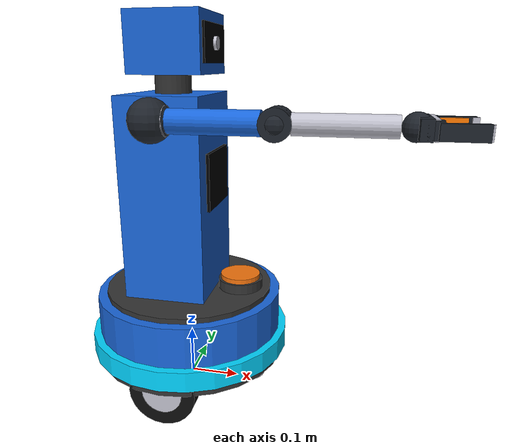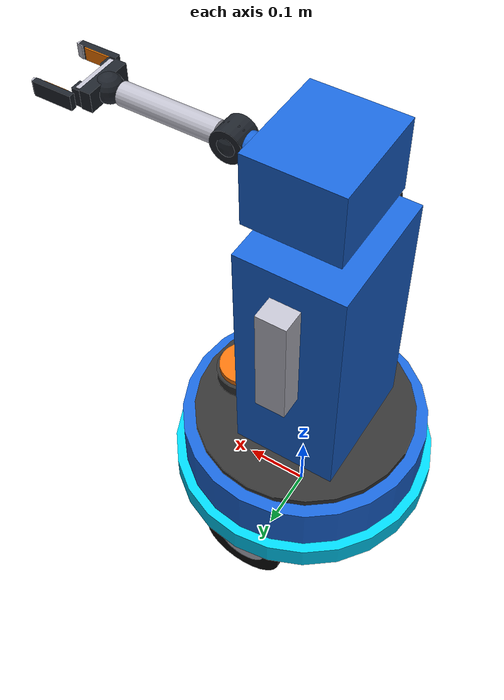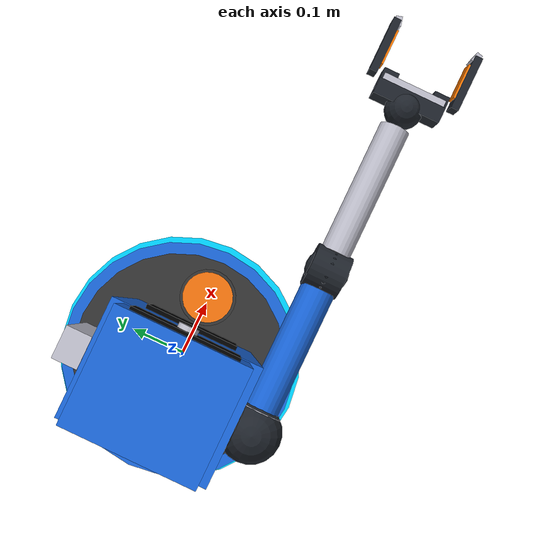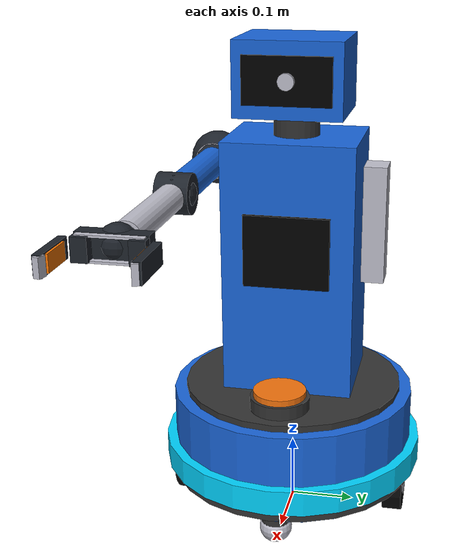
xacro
<?xml version="1.0"?>
<robot name="gracemo_vira" xmlns:xacro="http://www.ros.org/wiki/xacro">

  <!-- Include sub-files -->
  <xacro:include filename="$(find gracemo_description)/urdf/materials.xacro" />
  <xacro:include filename="$(find gracemo_description)/urdf/gazebo_plugins.xacro" />

  <!-- Dimensions & Constants -->
  <xacro:property name="wheel_radius" value="0.065" />
  <xacro:property name="wheel_width" value="0.030" />
  <xacro:property name="wheelbase" value="0.34" />
  <xacro:property name="chassis_radius" value="0.19" />
  <xacro:property name="chassis_height" value="0.14" />
  <xacro:property name="torso_height" value="0.40" />
  <xacro:property name="torso_width" value="0.20" />
  <xacro:property name="torso_depth" value="0.16" />

  <!-- Base Footprint (Ground Projection) -->
  <link name="base_footprint" />

  <joint name="base_footprint_joint" type="fixed">
    <parent link="base_footprint" />
    <child link="base_link" />
    <origin xyz="0 0 ${wheel_radius}" rpy="0 0 0" />
  </joint>

  <!-- Base Link (Sleek Mobile Chassis with Non-Overlapping Collision)          -->
  <link name="base_link">
    <!-- Visual Shell -->
    <visual>
      <origin xyz="0 0 ${chassis_height/2.0}" rpy="0 0 0" />
      <geometry>
        <cylinder radius="${chassis_radius}" length="${chassis_height}" />
      </geometry>
      <material name="chassis_blue" />
    </visual>
    <!-- Lower Protective Skirt -->
    <visual>
      <origin xyz="0 0 ${chassis_height * 0.2}" rpy="0 0 0" />
      <geometry>
        <cylinder radius="${chassis_radius + 0.005}" length="${chassis_height * 0.35}" />
      </geometry>
      <material name="dark_grey" />
    </visual>
    <!-- Top Deck Plate -->
    <visual>
      <origin xyz="0 0 ${chassis_height + 0.005}" rpy="0 0 0" />
      <geometry>
        <cylinder radius="${chassis_radius * 0.9}" length="0.01" />
      </geometry>
      <material name="dark_grey" />
    </visual>

    <collision name="base_link_collision">
      <origin xyz="0 0 0.08" rpy="0 0 0" />
      <geometry>
        <cylinder radius="${chassis_radius}" length="0.12" />
      </geometry>
    </collision>

    <!-- Heavy low base mass to keep wheels firmly planted with high traction -->
    <inertial>
      <origin xyz="0 0 0.02" rpy="0 0 0" />
      <mass value="8.0" />
      <inertia ixx="0.04" ixy="0.0" ixz="0.0" iyy="0.04" iyz="0.0" izz="0.06" />
    </inertial>
  </link>

  <!-- 360° Tactile Bumper Ring (Physical Contact Sensor & RGB Halo)            -->
  <link name="bumper_link">
    <visual>
      <origin xyz="0 0 0" rpy="0 0 0" />
      <geometry>
        <cylinder radius="0.205" length="0.04" />
      </geometry>
      <material name="cyan_glow" />
    </visual>
    <collision name="bumper_collision">
      <origin xyz="0 0 0" rpy="0 0 0" />
      <geometry>
        <cylinder radius="0.205" length="0.04" />
      </geometry>
    </collision>
    <inertial>
      <mass value="0.2" />
      <inertia ixx="0.001" ixy="0.0" ixz="0.0" iyy="0.001" iyz="0.0" izz="0.001" />
    </inertial>
  </link>

  <joint name="bumper_joint" type="fixed">
    <parent link="base_link" />
    <child link="bumper_link" />
    <origin xyz="0 0 0.04" rpy="0 0 0" />
  </joint>

  <!-- Corner ToF / Ultrasonic Proximity Sensor Mounts                          -->
  <link name="tof_front_left_link">
    <inertial><mass value="0.01"/><inertia ixx="0.00001" ixy="0" ixz="0" iyy="0.00001" iyz="0" izz="0.00001"/></inertial>
  </link>
  <joint name="tof_front_left_joint" type="fixed">
    <parent link="base_link" />
    <child link="tof_front_left_link" />
    <origin xyz="0.16 0.12 0.08" rpy="0 0 0.7854" />
  </joint>

  <link name="tof_front_right_link">
    <inertial><mass value="0.01"/><inertia ixx="0.00001" ixy="0" ixz="0" iyy="0.00001" iyz="0" izz="0.00001"/></inertial>
  </link>
  <joint name="tof_front_right_joint" type="fixed">
    <parent link="base_link" />
    <child link="tof_front_right_link" />
    <origin xyz="0.16 -0.12 0.08" rpy="0 0 -0.7854" />
  </joint>

  <link name="tof_rear_link">
    <inertial><mass value="0.01"/><inertia ixx="0.00001" ixy="0" ixz="0" iyy="0.00001" iyz="0" izz="0.00001"/></inertial>
  </link>
  <joint name="tof_rear_joint" type="fixed">
    <parent link="base_link" />
    <child link="tof_rear_link" />
    <origin xyz="-0.18 0 0.08" rpy="0 0 3.14159" />
  </joint>

  <!-- Drive Wheels & Topology Parameterization                                 -->
  <!-- Options: 'differential' (2WD + casters) | 'four_wheel_skid_steer' (4WD) -->
  <xacro:arg name="drive_layout" default="differential" />
  <xacro:property name="layout" value="$(arg drive_layout)" />

  <xacro:macro name="wheel" params="prefix y_offset x_offset:=0">
    <link name="${prefix}_wheel_link">
      <visual>
        <origin xyz="0 0 0" rpy="${pi/2} 0 0" />
        <geometry>
          <cylinder radius="${wheel_radius}" length="${wheel_width}" />
        </geometry>
        <material name="rubber_black" />
      </visual>
      <visual>
        <origin xyz="0 0 0" rpy="${pi/2} 0 0" />
        <geometry>
          <cylinder radius="${wheel_radius * 0.6}" length="${wheel_width + 0.002}" />
        </geometry>
        <material name="metallic_silver" />
      </visual>
      <collision>
        <origin xyz="0 0 0" rpy="${pi/2} 0 0" />
        <geometry>
          <cylinder radius="${wheel_radius}" length="${wheel_width}" />
        </geometry>
      </collision>
      <inertial>
        <mass value="0.8" />
        <inertia ixx="0.001" ixy="0.0" ixz="0.0" iyy="0.001" iyz="0.0" izz="0.001" />
      </inertial>
    </link>

    <joint name="${prefix}_wheel_joint" type="continuous">
      <parent link="base_link" />
      <child link="${prefix}_wheel_link" />
      <origin xyz="${x_offset} ${y_offset} 0" rpy="0 0 0" />
      <axis xyz="0 1 0" />
      <limit effort="150.0" velocity="20.0" />
      <dynamics damping="1.5" friction="1.5" />
    </joint>

    <gazebo reference="${prefix}_wheel_link">
      <mu1>1.5</mu1>
      <mu2>1.5</mu2>
      <kp>1000000.0</kp>
      <kd>100.0</kd>
      <minDepth>0.001</minDepth>
      <material>Gazebo/DarkGrey</material>
    </gazebo>
  </xacro:macro>

  <!-- Support Casters (Exact ground tangent frictionless gliders)              -->
  <xacro:macro name="caster" params="prefix x_offset">
    <link name="${prefix}_caster_link">
      <!-- Rolling Caster Ball -->
      <visual>
        <origin xyz="0 0 0" rpy="0 0 0" />
        <geometry>
          <sphere radius="0.025" />
        </geometry>
        <material name="metallic_silver" />
      </visual>
      <!-- Caster Mounting Housing / Bracket (solidly connects ball to chassis underside) -->
      <visual>
        <origin xyz="0 0 0.022" rpy="0 0 0" />
        <geometry>
          <cylinder radius="0.022" length="0.035" />
        </geometry>
        <material name="dark_grey" />
      </visual>
      <collision>
        <geometry>
          <sphere radius="0.025" />
        </geometry>
      </collision>
      <inertial>
        <mass value="0.05" />
        <inertia ixx="0.00001" ixy="0.0" ixz="0.0" iyy="0.00001" iyz="0.0" izz="0.00001" />
      </inertial>
    </link>

    <joint name="${prefix}_caster_joint" type="fixed">
      <parent link="base_link" />
      <child link="${prefix}_caster_link" />
      <origin xyz="${x_offset} 0 ${-wheel_radius + 0.025}" rpy="0 0 0" />
    </joint>

    <gazebo reference="${prefix}_caster_link">
      <mu1>0.0</mu1>
      <mu2>0.0</mu2>
      <kp>1000000.0</kp>
      <kd>100.0</kd>
      <minDepth>0.0001</minDepth>
      <material>Gazebo/Grey</material>
    </gazebo>
  </xacro:macro>

  <!-- Conditional Instantiation based on drive_layout -->
  <xacro:if value="${layout == 'differential'}">
    <!-- 2WD Differential Drive with Casters -->
    <xacro:wheel prefix="left" y_offset="${wheelbase/2.0}" />
    <xacro:wheel prefix="right" y_offset="${-wheelbase/2.0}" />
    <xacro:caster prefix="front" x_offset="0.14" />
    <xacro:caster prefix="rear" x_offset="-0.14" />
  </xacro:if>

  <xacro:if value="${layout == 'four_wheel_skid_steer'}">
    <!-- 4WD Skid-Steer / 4-Wheel Differential Drive -->
    <xacro:wheel prefix="front_left" y_offset="${wheelbase/2.0}" x_offset="0.12" />
    <xacro:wheel prefix="front_right" y_offset="${-wheelbase/2.0}" x_offset="0.12" />
    <xacro:wheel prefix="rear_left" y_offset="${wheelbase/2.0}" x_offset="-0.12" />
    <xacro:wheel prefix="rear_right" y_offset="${-wheelbase/2.0}" x_offset="-0.12" />
  </xacro:if>

  <!-- Humanoid Torso (Visual Only — Collision handled by unified base)         -->
  <link name="torso_link">
    <visual>
      <origin xyz="0 0 ${torso_height/2.0}" rpy="0 0 0" />
      <geometry>
        <box size="${torso_depth} ${torso_width} ${torso_height}" />
      </geometry>
      <material name="chassis_blue" />
    </visual>
    <visual>
      <origin xyz="${torso_depth/2.0 + 0.004} 0 ${torso_height * 0.6}" rpy="0 0 0" />
      <geometry>
        <box size="0.006 0.13 0.11" />
      </geometry>
      <material name="camera_lens_black" />
    </visual>
    <collision name="torso_collision">
      <origin xyz="0 0 ${torso_height/2.0}" rpy="0 0 0" />
      <geometry>
        <box size="${torso_depth} ${torso_width} ${torso_height}" />
      </geometry>
    </collision>
    <inertial>
      <origin xyz="0 0 0.05" rpy="0 0 0" />
      <mass value="0.3" />
      <inertia ixx="0.001" ixy="0.0" ixz="0.0" iyy="0.001" iyz="0.0" izz="0.001" />
    </inertial>
  </link>

  <joint name="torso_joint" type="fixed">
    <parent link="base_link" />
    <child link="torso_link" />
    <origin xyz="-0.02 0 ${chassis_height}" rpy="0 0 0" />
  </joint>

  <!-- 2D LiDAR Sensor                                                          -->
  <link name="lidar_link">
    <visual>
      <origin xyz="0 0 0.015" rpy="0 0 0" />
      <geometry>
        <cylinder radius="0.045" length="0.03" />
      </geometry>
      <material name="dark_grey" />
    </visual>
    <visual>
      <origin xyz="0 0 0.032" rpy="0 0 0" />
      <geometry>
        <cylinder radius="0.04" length="0.015" />
      </geometry>
      <material name="lidar_orange" />
    </visual>
    <collision name="lidar_collision">
      <origin xyz="0 0 0.015" rpy="0 0 0" />
      <geometry>
        <cylinder radius="0.045" length="0.03" />
      </geometry>
    </collision>
    <inertial>
      <origin xyz="0 0 0.02" rpy="0 0 0" />
      <mass value="0.2" />
      <inertia ixx="0.0001" ixy="0.0" ixz="0.0" iyy="0.0001" iyz="0.0" izz="0.0001" />
    </inertial>
  </link>

  <joint name="lidar_joint" type="fixed">
    <parent link="base_link" />
    <child link="lidar_link" />
    <origin xyz="0.11 0 ${chassis_height}" rpy="0 0 0" />
  </joint>

  <!-- 2-DOF Active Articulated Head & Neck Assembly                            -->
  <!-- Joint 1: Neck Pan Joint (Yaw around vertical Z-axis, ±120°) -->
  <joint name="neck_pan_joint" type="revolute">
    <parent link="torso_link" />
    <child link="neck_pan_link" />
    <origin xyz="0 0 ${torso_height}" rpy="0 0 0" />
    <axis xyz="0 0 1" />
    <limit lower="-2.0944" upper="2.0944" effort="25.0" velocity="3.0" />
    <dynamics damping="0.2" friction="0.05" />
  </joint>

  <!-- Intermediate Neck Pan Turntable Collar Link -->
  <link name="neck_pan_link">
    <visual>
      <origin xyz="0 0 0.02" rpy="0 0 0" />
      <geometry>
        <cylinder radius="0.035" length="0.04" />
      </geometry>
      <material name="dark_grey" />
    </visual>
    <collision name="neck_pan_collision">
      <origin xyz="0 0 0.02" rpy="0 0 0" />
      <geometry>
        <cylinder radius="0.035" length="0.04" />
      </geometry>
    </collision>
    <inertial>
      <origin xyz="0 0 0.02" rpy="0 0 0" />
      <mass value="0.15" />
      <inertia ixx="0.0001" ixy="0.0" ixz="0.0" iyy="0.0001" iyz="0.0" izz="0.0001" />
    </inertial>
  </link>

  <!-- Joint 2: Neck Tilt Joint (Pitch around lateral Y-axis, ±45°) -->
  <joint name="neck_tilt_joint" type="revolute">
    <parent link="neck_pan_link" />
    <child link="head_link" />
    <origin xyz="0 0 0.04" rpy="0 0 0" />
    <axis xyz="0 1 0" />
    <limit lower="-0.7854" upper="0.7854" effort="25.0" velocity="3.0" />
    <dynamics damping="0.2" friction="0.05" />
  </joint>

  <!-- Articulated Humanoid Head Body Link -->
  <link name="head_link">
    <!-- Head Visual Shell -->
    <visual>
      <origin xyz="0.01 0 0.05" rpy="0 0 0" />
      <geometry>
        <box size="0.14 0.16 0.11" />
      </geometry>
      <material name="chassis_blue" />
    </visual>
    <!-- Front Sensor Visor Display Face -->
    <visual>
      <origin xyz="0.081 0 0.05" rpy="0 0 0" />
      <geometry>
        <box size="0.006 0.13 0.07" />
      </geometry>
      <material name="camera_lens_black" />
    </visual>
    <!-- Preserved Head Collision Geometry -->
    <collision name="head_collision">
      <origin xyz="0.01 0 0.05" rpy="0 0 0" />
      <geometry>
        <box size="0.14 0.16 0.11" />
      </geometry>
    </collision>
    <inertial>
      <origin xyz="0.01 0 0.04" rpy="0 0 0" />
      <mass value="0.40" />
      <inertia ixx="0.001" ixy="0.0" ixz="0.0" iyy="0.001" iyz="0.0" izz="0.001" />
    </inertial>
  </link>

  <link name="camera_link">
    <visual>
      <origin xyz="0 0 0" rpy="0 ${pi/2} 0" />
      <geometry>
        <cylinder radius="0.012" length="0.01" />
      </geometry>
      <material name="metallic_silver" />
    </visual>
    <collision name="camera_collision">
      <origin xyz="0 0 0" rpy="0 ${pi/2} 0" />
      <geometry>
        <cylinder radius="0.012" length="0.01" />
      </geometry>
    </collision>
  </link>

  <joint name="camera_joint" type="fixed">
    <parent link="head_link" />
    <child link="camera_link" />
    <origin xyz="0.085 0 0.05" rpy="0 0 0" />
  </joint>

  <link name="camera_optical_link" />

  <joint name="camera_optical_joint" type="fixed">
    <parent link="camera_link" />
    <child link="camera_optical_link" />
    <origin xyz="0 0 0" rpy="${-pi/2} 0 ${-pi/2}" />
  </joint>

  <!-- Manipulation Arm Pods (Visual Only)                                      -->
  <!-- Left Arm Pod (Visual Only) -->
  <link name="left_arm_link">
    <visual>
      <origin xyz="0 0 -0.09" rpy="0 0 0" />
      <geometry>
        <box size="0.045 0.035 0.18" />
      </geometry>
      <material name="metallic_silver" />
    </visual>
    <collision name="left_arm_collision">
      <origin xyz="0 0 -0.09" rpy="0 0 0" />
      <geometry>
        <box size="0.045 0.035 0.18" />
      </geometry>
    </collision>
    <inertial>
      <origin xyz="0 0 -0.09" rpy="0 0 0" />
      <mass value="0.2" />
      <inertia ixx="0.001" ixy="0.0" ixz="0.0" iyy="0.001" iyz="0.0" izz="0.001" />
    </inertial>
  </link>

  <joint name="left_arm_joint" type="fixed">
    <parent link="torso_link" />
    <child link="left_arm_link" />
    <origin xyz="0.0 ${torso_width/2.0 + 0.022} ${torso_height - 0.04}" rpy="0 0 0" />
  </joint>

  <!-- 6-DOF Articulated Right Manipulator Arm (Milestones M2 / M3)             -->
  <!-- Joint 1: Shoulder Yaw (Z) — Spherical Ball-and-Socket Outer Cup -->
  <link name="right_shoulder_yaw_link">
    <!-- Outer Socket Cup (Matte Dark Titanium) -->
    <visual>
      <origin xyz="0 0 0" rpy="0 0 0" />
      <geometry>
        <sphere radius="0.040" />
      </geometry>
      <material name="matte_dark_titanium" />
    </visual>
    <!-- Torso Mounting Collar -->
    <visual>
      <origin xyz="0 0.015 0" rpy="${pi/2} 0 0" />
      <geometry>
        <cylinder radius="0.034" length="0.030" />
      </geometry>
      <material name="dark_grey" />
    </visual>
    <collision name="right_shoulder_yaw_collision">
      <origin xyz="0 0 0" rpy="0 0 0" />
      <geometry>
        <sphere radius="0.038" />
      </geometry>
    </collision>
    <inertial>
      <mass value="0.15" />
      <inertia ixx="0.0001" ixy="0.0" ixz="0.0" iyy="0.0001" iyz="0.0" izz="0.0001" />
    </inertial>
  </link>

  <joint name="right_shoulder_yaw_joint" type="revolute">
    <parent link="torso_link" />
    <child link="right_shoulder_yaw_link" />
    <origin xyz="0.0 ${-torso_width/2.0 - 0.022} ${torso_height - 0.04}" rpy="0 0 0" />
    <axis xyz="0 0 1" />
    <limit lower="-1.5708" upper="1.5708" effort="50.0" velocity="1.5" />
    <dynamics damping="0.2" friction="0.05" />
  </joint>

  <!-- Joint 2: Shoulder Pitch (Y) — Inner Ball Core & Gimbal Pivot -->
  <link name="right_shoulder_pitch_link">
    <!-- Rotating Spherical Ball Core (Metallic Silver) -->
    <visual>
      <origin xyz="0 0 0" rpy="0 0 0" />
      <geometry>
        <sphere radius="0.035" />
      </geometry>
      <material name="metallic_silver" />
    </visual>
    <!-- Lateral Pivot Bearing Caps -->
    <visual>
      <origin xyz="0 0 0" rpy="${pi/2} 0 0" />
      <geometry>
        <cylinder radius="0.026" length="0.046" />
      </geometry>
      <material name="matte_dark_titanium" />
    </visual>
    <collision name="right_shoulder_pitch_collision">
      <origin xyz="0 0 0" rpy="0 0 0" />
      <geometry>
        <sphere radius="0.034" />
      </geometry>
    </collision>
    <inertial>
      <mass value="0.15" />
      <inertia ixx="0.0001" ixy="0.0" ixz="0.0" iyy="0.0001" iyz="0.0" izz="0.0001" />
    </inertial>
  </link>

  <joint name="right_shoulder_pitch_joint" type="revolute">
    <parent link="right_shoulder_yaw_link" />
    <child link="right_shoulder_pitch_link" />
    <origin xyz="0 0 0" rpy="0 0 0" />
    <axis xyz="0 1 0" />
    <limit lower="-1.5708" upper="2.0944" effort="50.0" velocity="1.5" />
    <dynamics damping="0.2" friction="0.05" />
  </joint>

  <!-- Joint 3: Shoulder Roll (X) + Upper Arm Link (L1 = 0.22m along +X) with Elbow Knuckle Clevis -->
  <link name="right_upper_arm_link">
    <!-- Proximal Collar -->
    <visual>
      <origin xyz="0.015 0 0" rpy="0 ${pi/2} 0" />
      <geometry>
        <cylinder radius="0.027" length="0.030" />
      </geometry>
      <material name="metallic_silver" />
    </visual>
    <!-- Upper Arm Cylindrical Bone (Chassis Blue) -->
    <visual>
      <origin xyz="0.11 0 0" rpy="0 ${pi/2} 0" />
      <geometry>
        <cylinder radius="0.022" length="0.17" />
      </geometry>
      <material name="chassis_blue" />
    </visual>
    <!-- Distal Elbow Knuckle Hinge Housing (Matte Dark Titanium) -->
    <visual>
      <origin xyz="0.22 0 0" rpy="${pi/2} 0 0" />
      <geometry>
        <cylinder radius="0.028" length="0.046" />
      </geometry>
      <material name="matte_dark_titanium" />
    </visual>
    <visual>
      <origin xyz="0.22 0 0" rpy="0 0 0" />
      <geometry>
        <sphere radius="0.028" />
      </geometry>
      <material name="matte_dark_titanium" />
    </visual>
    <collision>
      <origin xyz="0.11 0 0" rpy="0 ${pi/2} 0" />
      <geometry>
        <cylinder radius="0.024" length="0.22" />
      </geometry>
    </collision>
    <inertial>
      <origin xyz="0.11 0 0" rpy="0 0 0" />
      <mass value="0.25" />
      <inertia ixx="0.0002" ixy="0.0" ixz="0.0" iyy="0.001" iyz="0.0" izz="0.001" />
    </inertial>
  </link>

  <joint name="right_shoulder_roll_joint" type="revolute">
    <parent link="right_shoulder_pitch_link" />
    <child link="right_upper_arm_link" />
    <origin xyz="0 0 0" rpy="0 0 0" />
    <axis xyz="1 0 0" />
    <limit lower="-0.7854" upper="1.5708" effort="50.0" velocity="1.5" />
    <dynamics damping="0.2" friction="0.05" />
  </joint>

  <!-- Joint 4: Elbow Pitch (Y) + Forearm Link (L2 = 0.22m along +X) with Knuckle Bearing -->
  <link name="right_forearm_link">
    <!-- Elbow Inner Hinge Bearing (Metallic Silver) -->
    <visual>
      <origin xyz="0 0 0" rpy="${pi/2} 0 0" />
      <geometry>
        <cylinder radius="0.024" length="0.038" />
      </geometry>
      <material name="metallic_silver" />
    </visual>
    <visual>
      <origin xyz="0 0 0" rpy="0 0 0" />
      <geometry>
        <sphere radius="0.024" />
      </geometry>
      <material name="metallic_silver" />
    </visual>
    <!-- Forearm Bone (Metallic Silver) -->
    <visual>
      <origin xyz="0.11 0 0" rpy="0 ${pi/2} 0" />
      <geometry>
        <cylinder radius="0.019" length="0.17" />
      </geometry>
      <material name="metallic_silver" />
    </visual>
    <!-- Distal Wrist Knuckle Cup (Matte Dark Titanium) -->
    <visual>
      <origin xyz="0.22 0 0" rpy="0 0 0" />
      <geometry>
        <sphere radius="0.024" />
      </geometry>
      <material name="matte_dark_titanium" />
    </visual>
    <collision>
      <origin xyz="0.11 0 0" rpy="0 ${pi/2} 0" />
      <geometry>
        <cylinder radius="0.020" length="0.22" />
      </geometry>
    </collision>
    <inertial>
      <origin xyz="0.11 0 0" rpy="0 0 0" />
      <mass value="0.25" />
      <inertia ixx="0.0002" ixy="0.0" ixz="0.0" iyy="0.0010" iyz="0.0" izz="0.0010" />
    </inertial>
  </link>

  <joint name="right_elbow_pitch_joint" type="revolute">
    <parent link="right_upper_arm_link" />
    <child link="right_forearm_link" />
    <origin xyz="0.22 0 0" rpy="0 0 0" />
    <axis xyz="0 1 0" />
    <limit lower="-2.3562" upper="0.0" effort="50.0" velocity="1.5" />
    <dynamics damping="0.2" friction="0.05" />
  </joint>

  <!-- Joint 5: Wrist Pitch Joint (Y) connecting Forearm to Wrist Pitch Gimbal Link -->
  <link name="right_wrist_pitch_link">
    <visual>
      <origin xyz="0 0 0" rpy="0 ${pi/2} 0" />
      <geometry>
        <cylinder radius="0.020" length="0.025" />
      </geometry>
      <material name="metallic_silver" />
    </visual>
    <collision name="right_wrist_pitch_collision">
      <origin xyz="0 0 0" rpy="0 ${pi/2} 0" />
      <geometry>
        <cylinder radius="0.020" length="0.025" />
      </geometry>
    </collision>
    <inertial>
      <origin xyz="0 0 0" rpy="0 0 0" />
      <mass value="0.05" />
      <inertia ixx="0.00002" ixy="0.0" ixz="0.0" iyy="0.00002" iyz="0.0" izz="0.00002" />
    </inertial>
  </link>

  <joint name="right_wrist_pitch_joint" type="revolute">
    <parent link="right_forearm_link" />
    <child link="right_wrist_pitch_link" />
    <origin xyz="0.22 0 0" rpy="0 0 0" />
    <axis xyz="0 1 0" />
    <limit lower="-1.5708" upper="1.5708" effort="30.0" velocity="2.0" />
    <dynamics damping="0.1" friction="0.02" />
  </joint>

  <!-- Joint 6: Wrist Yaw Joint (Z) providing lateral/sideways wrist deviation -->
  <link name="right_wrist_yaw_link">
    <visual>
      <origin xyz="0 0 0" rpy="0 0 0" />
      <geometry>
        <cylinder radius="0.018" length="0.020" />
      </geometry>
      <material name="matte_dark_titanium" />
    </visual>
    <collision name="right_wrist_yaw_collision">
      <origin xyz="0 0 0" rpy="0 0 0" />
      <geometry>
        <cylinder radius="0.018" length="0.020" />
      </geometry>
    </collision>
    <inertial>
      <origin xyz="0 0 0" rpy="0 0 0" />
      <mass value="0.04" />
      <inertia ixx="0.00001" ixy="0.0" ixz="0.0" iyy="0.00001" iyz="0.0" izz="0.00001" />
    </inertial>
  </link>

  <joint name="right_wrist_yaw_joint" type="revolute">
    <parent link="right_wrist_pitch_link" />
    <child link="right_wrist_yaw_link" />
    <origin xyz="0 0 0" rpy="0 0 0" />
    <axis xyz="0 0 1" />
    <limit lower="-1.5708" upper="1.5708" effort="25.0" velocity="2.5" />
    <dynamics damping="0.1" friction="0.02" />
  </joint>

  <!-- Joint 7: Wrist Roll Joint (X) connecting Wrist Yaw Link to Palm -->
  <joint name="right_wrist_roll_joint" type="revolute">
    <parent link="right_wrist_yaw_link" />
    <child link="right_palm_link" />
    <origin xyz="0 0 0" rpy="0 0 0" />
    <axis xyz="1 0 0" />
    <limit lower="-3.1415" upper="3.1415" effort="25.0" velocity="2.5" />
    <dynamics damping="0.1" friction="0.02" />
  </joint>

  <!-- Hand Subsystem Palm Link (Compact 88mm Franka/Robotiq-style housing with recessed U-channel) -->
  <link name="right_palm_link">
    <!-- Main Back Housing (Matte Dark Titanium) -->
    <visual>
      <origin xyz="0.010 0 0" rpy="0 0 0" />
      <geometry>
        <box size="0.020 0.088 0.034" />
      </geometry>
      <material name="matte_dark_titanium" />
    </visual>
    <!-- Left Actuator Stanchion -->
    <visual>
      <origin xyz="0.022 0.034 0" rpy="0 0 0" />
      <geometry>
        <box size="0.024 0.020 0.030" />
      </geometry>
      <material name="matte_dark_titanium" />
    </visual>
    <!-- Right Actuator Stanchion -->
    <visual>
      <origin xyz="0.022 -0.034 0" rpy="0 0 0" />
      <geometry>
        <box size="0.024 0.020 0.030" />
      </geometry>
      <material name="matte_dark_titanium" />
    </visual>
    <!-- Metallic Silver Guide Rail Trim -->
    <visual>
      <origin xyz="0.020 0 0.015" rpy="0 0 0" />
      <geometry>
        <box size="0.016 0.082 0.003" />
      </geometry>
      <material name="metallic_silver" />
    </visual>
    <visual>
      <origin xyz="0.020 0 -0.015" rpy="0 0 0" />
      <geometry>
        <box size="0.016 0.082 0.003" />
      </geometry>
      <material name="metallic_silver" />
    </visual>
    <!-- Non-colliding recessed palm collision: only back plate and side stanchions, leaving center U-channel clear -->
    <collision name="right_palm_collision">
      <origin xyz="0.010 0 0" rpy="0 0 0" />
      <geometry>
        <box size="0.020 0.088 0.034" />
      </geometry>
    </collision>
    <inertial>
      <origin xyz="0.012 0 0" rpy="0 0 0" />
      <mass value="0.12" />
      <inertia ixx="0.00008" ixy="0.0" ixz="0.0" iyy="0.00005" iyz="0.0" izz="0.00008" />
    </inertial>
  </link>

  <!-- Left Gripper Finger (mounted at outer edge +50mm, travels inward 45mm, tapered with orange silicone pad) -->
  <link name="finger_left_link">
    <!-- Structural Finger Body (Matte Dark Titanium) -->
    <visual>
      <origin xyz="0.035 0.005 0" rpy="0 0 0" />
      <geometry>
        <box size="0.070 0.010 0.026" />
      </geometry>
      <material name="matte_dark_titanium" />
    </visual>
    <!-- Tapered Chamfered Fingertip (Metallic Silver) -->
    <visual>
      <origin xyz="0.068 0.003 0" rpy="0 0 0.25" />
      <geometry>
        <box size="0.012 0.008 0.024" />
      </geometry>
      <material name="metallic_silver" />
    </visual>
    <!-- High-Friction Orange Silicone Grip Pad (Inner Contact Face) -->
    <visual>
      <origin xyz="0.035 -0.001 0" rpy="0 0 0" />
      <geometry>
        <box size="0.045 0.003 0.022" />
      </geometry>
      <material name="safety_orange" />
    </visual>
    <!-- Collision includes the inner high-friction pad surface -->
    <collision name="finger_left_collision">
      <origin xyz="0.035 0.002 0" rpy="0 0 0" />
      <geometry>
        <box size="0.070 0.012 0.026" />
      </geometry>
    </collision>
    <inertial>
      <origin xyz="0.035 0.002 0" rpy="0 0 0" />
      <mass value="0.030" />
      <inertia ixx="0.00001" ixy="0.0" ixz="0.0" iyy="0.00001" iyz="0.0" izz="0.00001" />
    </inertial>
  </link>

  <joint name="finger_left_joint" type="prismatic">
    <parent link="right_palm_link" />
    <child link="finger_left_link" />
    <origin xyz="0.025 0.050 0" rpy="0 0 0" />
    <axis xyz="0 -1 0" />
    <limit lower="0.0" upper="0.045" effort="60.0" velocity="0.30" />
    <dynamics damping="0.5" friction="0.05" />
  </joint>

  <!-- Right Gripper Finger (mounted at outer edge -50mm, travels inward 45mm, tapered with orange silicone pad) -->
  <link name="finger_right_link">
    <!-- Structural Finger Body (Matte Dark Titanium) -->
    <visual>
      <origin xyz="0.035 -0.005 0" rpy="0 0 0" />
      <geometry>
        <box size="0.070 0.010 0.026" />
      </geometry>
      <material name="matte_dark_titanium" />
    </visual>
    <!-- Tapered Chamfered Fingertip (Metallic Silver) -->
    <visual>
      <origin xyz="0.068 -0.003 0" rpy="0 0 -0.25" />
      <geometry>
        <box size="0.012 0.008 0.024" />
      </geometry>
      <material name="metallic_silver" />
    </visual>
    <!-- High-Friction Orange Silicone Grip Pad (Inner Contact Face) -->
    <visual>
      <origin xyz="0.035 0.001 0" rpy="0 0 0" />
      <geometry>
        <box size="0.045 0.003 0.022" />
      </geometry>
      <material name="safety_orange" />
    </visual>
    <!-- Collision includes the inner high-friction pad surface -->
    <collision name="finger_right_collision">
      <origin xyz="0.035 -0.002 0" rpy="0 0 0" />
      <geometry>
        <box size="0.070 0.012 0.026" />
      </geometry>
    </collision>
    <inertial>
      <origin xyz="0.035 -0.002 0" rpy="0 0 0" />
      <mass value="0.030" />
      <inertia ixx="0.00001" ixy="0.0" ixz="0.0" iyy="0.00001" iyz="0.0" izz="0.00001" />
    </inertial>
  </link>

  <joint name="finger_right_joint" type="prismatic">
    <parent link="right_palm_link" />
    <child link="finger_right_link" />
    <origin xyz="0.025 -0.050 0" rpy="0 0 0" />
    <axis xyz="0 1 0" />
    <limit lower="0.0" upper="0.045" effort="60.0" velocity="0.30" />
    <dynamics damping="0.5" friction="0.05" />
  </joint>

  <gazebo reference="finger_left_link">
    <mu1>3.5</mu1>
    <mu2>3.5</mu2>
    <kp>1000000.0</kp>
    <kd>100.0</kd>
    <minDepth>0.002</minDepth>
    <material>Gazebo/Orange</material>
  </gazebo>
  <gazebo reference="finger_right_link">
    <mu1>3.5</mu1>
    <mu2>3.5</mu2>
    <kp>1000000.0</kp>
    <kd>100.0</kd>
    <minDepth>0.002</minDepth>
    <material>Gazebo/Orange</material>
  </gazebo>

  <!-- IMU Link -->
  <link name="imu_link" />
  <joint name="imu_joint" type="fixed">
    <parent link="base_link" />
    <child link="imu_link" />
    <origin xyz="0 0 0.08" rpy="0 0 0" />
  </joint>

  <!-- Prevent internal collision explosion -->
  <gazebo>
    <self_collide>false</self_collide>
  </gazebo>

</robot>

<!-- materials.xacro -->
<robot xmlns:xacro="http://www.ros.org/wiki/xacro">

  <material name="chassis_blue">
    <color rgba="0.10 0.40 0.85 1.0"/>
  </material>

  <material name="dark_grey">
    <color rgba="0.20 0.20 0.20 1.0"/>
  </material>

  <material name="rubber_black">
    <color rgba="0.05 0.05 0.05 1.0"/>
  </material>

  <material name="metallic_silver">
    <color rgba="0.75 0.75 0.80 1.0"/>
  </material>

  <material name="camera_lens_black">
    <color rgba="0.0 0.0 0.0 1.0"/>
  </material>

  <material name="lidar_orange">
    <color rgba="0.95 0.45 0.05 1.0"/>
  </material>

  <material name="cyan_glow">
    <color rgba="0.0 0.83 1.0 1.0"/>
  </material>

  <material name="matte_dark_titanium">
    <color rgba="0.12 0.14 0.17 1.0"/>
  </material>

  <material name="safety_orange">
    <color rgba="1.0 0.4745 0.0 1.0"/>
  </material>

  <material name="accent_orange">
    <color rgba="1.0 0.4745 0.0 1.0"/>
  </material>

  <material name="pure_white">
    <color rgba="0.96 0.96 0.96 1.0"/>
  </material>

</robot>
